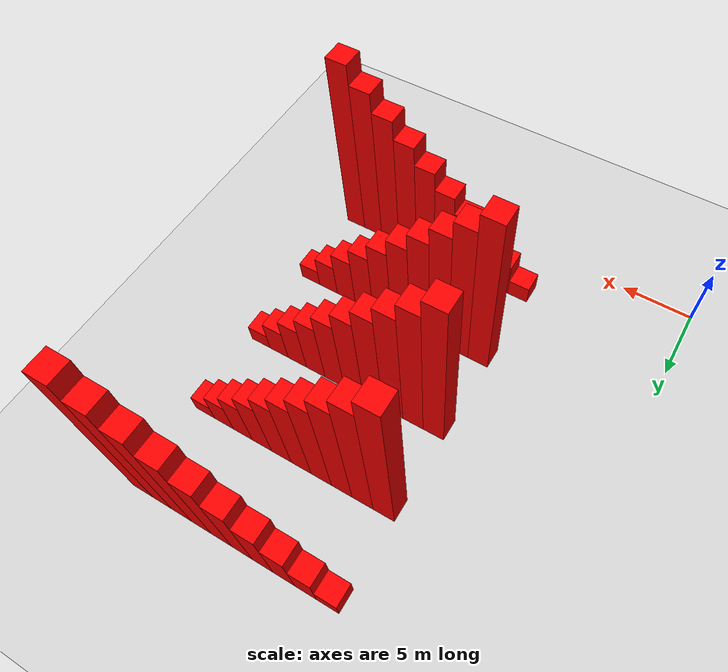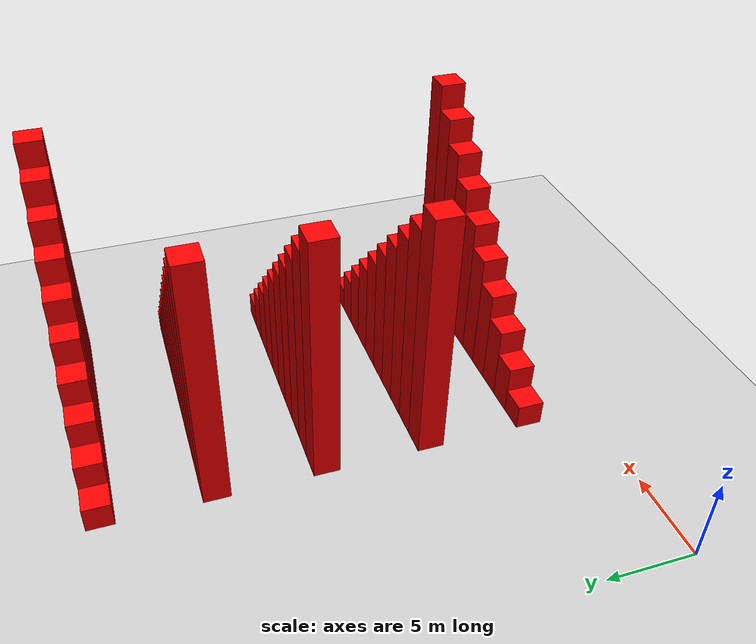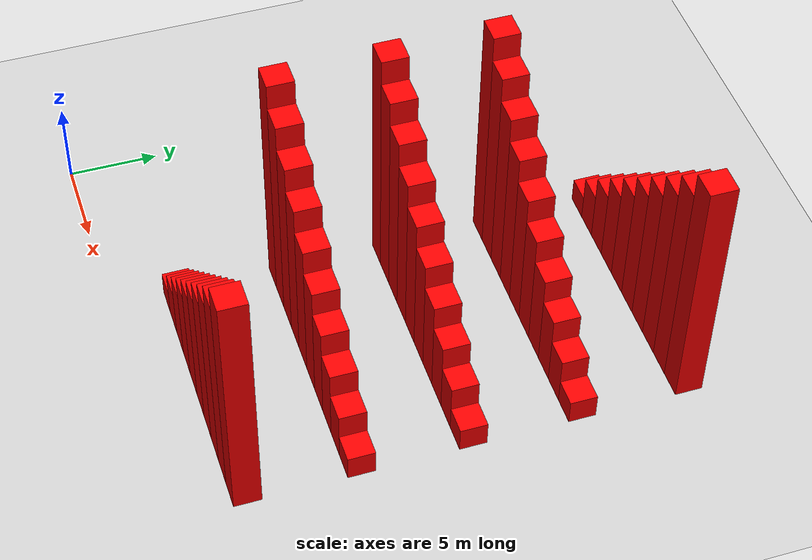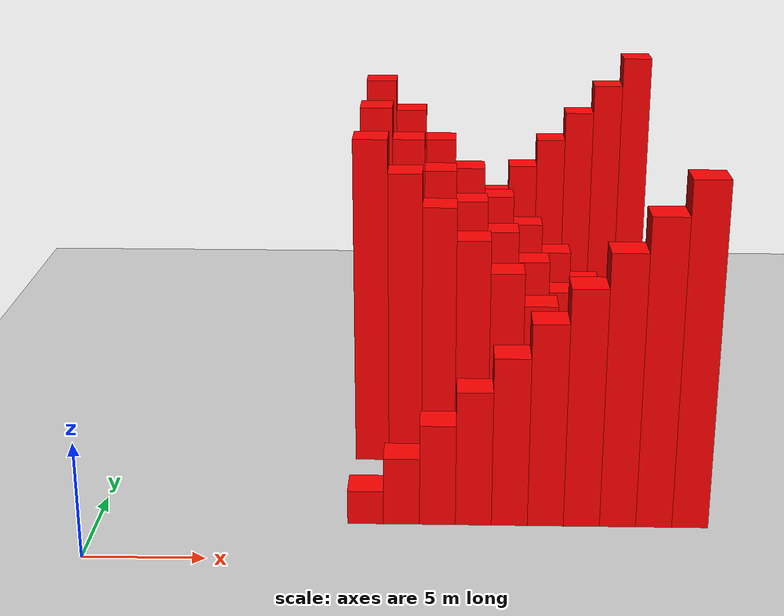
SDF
<sdf version="1.4">
 <world name="default">
  <include><uri>model://sun</uri></include>
  <include><uri>model://ground_plane</uri></include>
  <model name="barrier_7_2_1">
   <pose>11.25 3.75 0.75 0 -0 0</pose>
   <static>1</static>
   <link name="link">
    <collision name="collision"><geometry><box><size>1.5 1.5 1.5</size></box></geometry></collision>
    <visual name="visual">
     <geometry><box><size>1.5 1.5 1.5</size></box></geometry>
     <material>
      <ambient>1 0 0 1</ambient>
      <diffuse>1 0 0 1</diffuse>
      <specular>0.1 0.1 0.1 1</specular>
      <emissive>0 0 0 0</emissive>
     </material>
    </visual>
   </link>
  </model>
  <model name="barrier_8_2_2">
   <pose>12.75 3.75 1.5 0 -0 0</pose>
   <static>1</static>
   <link name="link">
    <collision name="collision"><geometry><box><size>1.5 1.5 3.0</size></box></geometry></collision>
    <visual name="visual">
     <geometry><box><size>1.5 1.5 3.0</size></box></geometry>
     <material>
      <ambient>1 0 0 1</ambient>
      <diffuse>1 0 0 1</diffuse>
      <specular>0.1 0.1 0.1 1</specular>
      <emissive>0 0 0 0</emissive>
     </material>
    </visual>
   </link>
  </model>
  <model name="barrier_9_2_3">
   <pose>14.25 3.75 2.25 0 -0 0</pose>
   <static>1</static>
   <link name="link">
    <collision name="collision"><geometry><box><size>1.5 1.5 4.5</size></box></geometry></collision>
    <visual name="visual">
     <geometry><box><size>1.5 1.5 4.5</size></box></geometry>
     <material>
      <ambient>1 0 0 1</ambient>
      <diffuse>1 0 0 1</diffuse>
      <specular>0.1 0.1 0.1 1</specular>
      <emissive>0 0 0 0</emissive>
     </material>
    </visual>
   </link>
  </model>
  <model name="barrier_10_2_4">
   <pose>15.75 3.75 3.0 0 -0 0</pose>
   <static>1</static>
   <link name="link">
    <collision name="collision"><geometry><box><size>1.5 1.5 6.0</size></box></geometry></collision>
    <visual name="visual">
     <geometry><box><size>1.5 1.5 6.0</size></box></geometry>
     <material>
      <ambient>1 0 0 1</ambient>
      <diffuse>1 0 0 1</diffuse>
      <specular>0.1 0.1 0.1 1</specular>
      <emissive>0 0 0 0</emissive>
     </material>
    </visual>
   </link>
  </model>
  <model name="barrier_11_2_5">
   <pose>17.25 3.75 3.75 0 -0 0</pose>
   <static>1</static>
   <link name="link">
    <collision name="collision"><geometry><box><size>1.5 1.5 7.5</size></box></geometry></collision>
    <visual name="visual">
     <geometry><box><size>1.5 1.5 7.5</size></box></geometry>
     <material>
      <ambient>1 0 0 1</ambient>
      <diffuse>1 0 0 1</diffuse>
      <specular>0.1 0.1 0.1 1</specular>
      <emissive>0 0 0 0</emissive>
     </material>
    </visual>
   </link>
  </model>
  <model name="barrier_12_2_6">
   <pose>18.75 3.75 4.5 0 -0 0</pose>
   <static>1</static>
   <link name="link">
    <collision name="collision"><geometry><box><size>1.5 1.5 9.0</size></box></geometry></collision>
    <visual name="visual">
     <geometry><box><size>1.5 1.5 9.0</size></box></geometry>
     <material>
      <ambient>1 0 0 1</ambient>
      <diffuse>1 0 0 1</diffuse>
      <specular>0.1 0.1 0.1 1</specular>
      <emissive>0 0 0 0</emissive>
     </material>
    </visual>
   </link>
  </model>
  <model name="barrier_13_2_7">
   <pose>20.25 3.75 5.25 0 -0 0</pose>
   <static>1</static>
   <link name="link">
    <collision name="collision"><geometry><box><size>1.5 1.5 10.5</size></box></geometry></collision>
    <visual name="visual">
     <geometry><box><size>1.5 1.5 10.5</size></box></geometry>
     <material>
      <ambient>1 0 0 1</ambient>
      <diffuse>1 0 0 1</diffuse>
      <specular>0.1 0.1 0.1 1</specular>
      <emissive>0 0 0 0</emissive>
     </material>
    </visual>
   </link>
  </model>
  <model name="barrier_14_2_8">
   <pose>21.75 3.75 6.0 0 -0 0</pose>
   <static>1</static>
   <link name="link">
    <collision name="collision"><geometry><box><size>1.5 1.5 12.0</size></box></geometry></collision>
    <visual name="visual">
     <geometry><box><size>1.5 1.5 12.0</size></box></geometry>
     <material>
      <ambient>1 0 0 1</ambient>
      <diffuse>1 0 0 1</diffuse>
      <specular>0.1 0.1 0.1 1</specular>
      <emissive>0 0 0 0</emissive>
     </material>
    </visual>
   </link>
  </model>
  <model name="barrier_15_2_9">
   <pose>23.25 3.75 6.75 0 -0 0</pose>
   <static>1</static>
   <link name="link">
    <collision name="collision"><geometry><box><size>1.5 1.5 13.5</size></box></geometry></collision>
    <visual name="visual">
     <geometry><box><size>1.5 1.5 13.5</size></box></geometry>
     <material>
      <ambient>1 0 0 1</ambient>
      <diffuse>1 0 0 1</diffuse>
      <specular>0.1 0.1 0.1 1</specular>
      <emissive>0 0 0 0</emissive>
     </material>
    </visual>
   </link>
  </model>
  <model name="barrier_16_2_10">
   <pose>24.75 3.75 7.5 0 -0 0</pose>
   <static>1</static>
   <link name="link">
    <collision name="collision"><geometry><box><size>1.5 1.5 15.0</size></box></geometry></collision>
    <visual name="visual">
     <geometry><box><size>1.5 1.5 15.0</size></box></geometry>
     <material>
      <ambient>1 0 0 1</ambient>
      <diffuse>1 0 0 1</diffuse>
      <specular>0.1 0.1 0.1 1</specular>
      <emissive>0 0 0 0</emissive>
     </material>
    </visual>
   </link>
  </model>
  <model name="barrier_7_6_10">
   <pose>11.25 9.75 7.5 0 -0 0</pose>
   <static>1</static>
   <link name="link">
    <collision name="collision"><geometry><box><size>1.5 1.5 15.0</size></box></geometry></collision>
    <visual name="visual">
     <geometry><box><size>1.5 1.5 15.0</size></box></geometry>
     <material>
      <ambient>1 0 0 1</ambient>
      <diffuse>1 0 0 1</diffuse>
      <specular>0.1 0.1 0.1 1</specular>
      <emissive>0 0 0 0</emissive>
     </material>
    </visual>
   </link>
  </model>
  <model name="barrier_8_6_9">
   <pose>12.75 9.75 6.75 0 -0 0</pose>
   <static>1</static>
   <link name="link">
    <collision name="collision"><geometry><box><size>1.5 1.5 13.5</size></box></geometry></collision>
    <visual name="visual">
     <geometry><box><size>1.5 1.5 13.5</size></box></geometry>
     <material>
      <ambient>1 0 0 1</ambient>
      <diffuse>1 0 0 1</diffuse>
      <specular>0.1 0.1 0.1 1</specular>
      <emissive>0 0 0 0</emissive>
     </material>
    </visual>
   </link>
  </model>
  <model name="barrier_9_6_8">
   <pose>14.25 9.75 6.0 0 -0 0</pose>
   <static>1</static>
   <link name="link">
    <collision name="collision"><geometry><box><size>1.5 1.5 12.0</size></box></geometry></collision>
    <visual name="visual">
     <geometry><box><size>1.5 1.5 12.0</size></box></geometry>
     <material>
      <ambient>1 0 0 1</ambient>
      <diffuse>1 0 0 1</diffuse>
      <specular>0.1 0.1 0.1 1</specular>
      <emissive>0 0 0 0</emissive>
     </material>
    </visual>
   </link>
  </model>
  <model name="barrier_10_6_7">
   <pose>15.75 9.75 5.25 0 -0 0</pose>
   <static>1</static>
   <link name="link">
    <collision name="collision"><geometry><box><size>1.5 1.5 10.5</size></box></geometry></collision>
    <visual name="visual">
     <geometry><box><size>1.5 1.5 10.5</size></box></geometry>
     <material>
      <ambient>1 0 0 1</ambient>
      <diffuse>1 0 0 1</diffuse>
      <specular>0.1 0.1 0.1 1</specular>
      <emissive>0 0 0 0</emissive>
     </material>
    </visual>
   </link>
  </model>
  <model name="barrier_11_6_6">
   <pose>17.25 9.75 4.5 0 -0 0</pose>
   <static>1</static>
   <link name="link">
    <collision name="collision"><geometry><box><size>1.5 1.5 9.0</size></box></geometry></collision>
    <visual name="visual">
     <geometry><box><size>1.5 1.5 9.0</size></box></geometry>
     <material>
      <ambient>1 0 0 1</ambient>
      <diffuse>1 0 0 1</diffuse>
      <specular>0.1 0.1 0.1 1</specular>
      <emissive>0 0 0 0</emissive>
     </material>
    </visual>
   </link>
  </model>
  <model name="barrier_12_6_5">
   <pose>18.75 9.75 3.75 0 -0 0</pose>
   <static>1</static>
   <link name="link">
    <collision name="collision"><geometry><box><size>1.5 1.5 7.5</size></box></geometry></collision>
    <visual name="visual">
     <geometry><box><size>1.5 1.5 7.5</size></box></geometry>
     <material>
      <ambient>1 0 0 1</ambient>
      <diffuse>1 0 0 1</diffuse>
      <specular>0.1 0.1 0.1 1</specular>
      <emissive>0 0 0 0</emissive>
     </material>
    </visual>
   </link>
  </model>
  <model name="barrier_13_6_4">
   <pose>20.25 9.75 3.0 0 -0 0</pose>
   <static>1</static>
   <link name="link">
    <collision name="collision"><geometry><box><size>1.5 1.5 6.0</size></box></geometry></collision>
    <visual name="visual">
     <geometry><box><size>1.5 1.5 6.0</size></box></geometry>
     <material>
      <ambient>1 0 0 1</ambient>
      <diffuse>1 0 0 1</diffuse>
      <specular>0.1 0.1 0.1 1</specular>
      <emissive>0 0 0 0</emissive>
     </material>
    </visual>
   </link>
  </model>
  <model name="barrier_14_6_3">
   <pose>21.75 9.75 2.25 0 -0 0</pose>
   <static>1</static>
   <link name="link">
    <collision name="collision"><geometry><box><size>1.5 1.5 4.5</size></box></geometry></collision>
    <visual name="visual">
     <geometry><box><size>1.5 1.5 4.5</size></box></geometry>
     <material>
      <ambient>1 0 0 1</ambient>
      <diffuse>1 0 0 1</diffuse>
      <specular>0.1 0.1 0.1 1</specular>
      <emissive>0 0 0 0</emissive>
     </material>
    </visual>
   </link>
  </model>
  <model name="barrier_15_6_2">
   <pose>23.25 9.75 1.5 0 -0 0</pose>
   <static>1</static>
   <link name="link">
    <collision name="collision"><geometry><box><size>1.5 1.5 3.0</size></box></geometry></collision>
    <visual name="visual">
     <geometry><box><size>1.5 1.5 3.0</size></box></geometry>
     <material>
      <ambient>1 0 0 1</ambient>
      <diffuse>1 0 0 1</diffuse>
      <specular>0.1 0.1 0.1 1</specular>
      <emissive>0 0 0 0</emissive>
     </material>
    </visual>
   </link>
  </model>
  <model name="barrier_16_6_1">
   <pose>24.75 9.75 0.75 0 -0 0</pose>
   <static>1</static>
   <link name="link">
    <collision name="collision"><geometry><box><size>1.5 1.5 1.5</size></box></geometry></collision>
    <visual name="visual">
     <geometry><box><size>1.5 1.5 1.5</size></box></geometry>
     <material>
      <ambient>1 0 0 1</ambient>
      <diffuse>1 0 0 1</diffuse>
      <specular>0.1 0.1 0.1 1</specular>
      <emissive>0 0 0 0</emissive>
     </material>
    </visual>
   </link>
  </model>
  <model name="barrier_7_10_10">
   <pose>11.25 15.75 7.5 0 -0 0</pose>
   <static>1</static>
   <link name="link">
    <collision name="collision"><geometry><box><size>1.5 1.5 15.0</size></box></geometry></collision>
    <visual name="visual">
     <geometry><box><size>1.5 1.5 15.0</size></box></geometry>
     <material>
      <ambient>1 0 0 1</ambient>
      <diffuse>1 0 0 1</diffuse>
      <specular>0.1 0.1 0.1 1</specular>
      <emissive>0 0 0 0</emissive>
     </material>
    </visual>
   </link>
  </model>
  <model name="barrier_8_10_9">
   <pose>12.75 15.75 6.75 0 -0 0</pose>
   <static>1</static>
   <link name="link">
    <collision name="collision"><geometry><box><size>1.5 1.5 13.5</size></box></geometry></collision>
    <visual name="visual">
     <geometry><box><size>1.5 1.5 13.5</size></box></geometry>
     <material>
      <ambient>1 0 0 1</ambient>
      <diffuse>1 0 0 1</diffuse>
      <specular>0.1 0.1 0.1 1</specular>
      <emissive>0 0 0 0</emissive>
     </material>
    </visual>
   </link>
  </model>
  <model name="barrier_9_10_8">
   <pose>14.25 15.75 6.0 0 -0 0</pose>
   <static>1</static>
   <link name="link">
    <collision name="collision"><geometry><box><size>1.5 1.5 12.0</size></box></geometry></collision>
    <visual name="visual">
     <geometry><box><size>1.5 1.5 12.0</size></box></geometry>
     <material>
      <ambient>1 0 0 1</ambient>
      <diffuse>1 0 0 1</diffuse>
      <specular>0.1 0.1 0.1 1</specular>
      <emissive>0 0 0 0</emissive>
     </material>
    </visual>
   </link>
  </model>
  <model name="barrier_10_10_7">
   <pose>15.75 15.75 5.25 0 -0 0</pose>
   <static>1</static>
   <link name="link">
    <collision name="collision"><geometry><box><size>1.5 1.5 10.5</size></box></geometry></collision>
    <visual name="visual">
     <geometry><box><size>1.5 1.5 10.5</size></box></geometry>
     <material>
      <ambient>1 0 0 1</ambient>
      <diffuse>1 0 0 1</diffuse>
      <specular>0.1 0.1 0.1 1</specular>
      <emissive>0 0 0 0</emissive>
     </material>
    </visual>
   </link>
  </model>
  <model name="barrier_11_10_6">
   <pose>17.25 15.75 4.5 0 -0 0</pose>
   <static>1</static>
   <link name="link">
    <collision name="collision"><geometry><box><size>1.5 1.5 9.0</size></box></geometry></collision>
    <visual name="visual">
     <geometry><box><size>1.5 1.5 9.0</size></box></geometry>
     <material>
      <ambient>1 0 0 1</ambient>
      <diffuse>1 0 0 1</diffuse>
      <specular>0.1 0.1 0.1 1</specular>
      <emissive>0 0 0 0</emissive>
     </material>
    </visual>
   </link>
  </model>
  <model name="barrier_12_10_5">
   <pose>18.75 15.75 3.75 0 -0 0</pose>
   <static>1</static>
   <link name="link">
    <collision name="collision"><geometry><box><size>1.5 1.5 7.5</size></box></geometry></collision>
    <visual name="visual">
     <geometry><box><size>1.5 1.5 7.5</size></box></geometry>
     <material>
      <ambient>1 0 0 1</ambient>
      <diffuse>1 0 0 1</diffuse>
      <specular>0.1 0.1 0.1 1</specular>
      <emissive>0 0 0 0</emissive>
     </material>
    </visual>
   </link>
  </model>
  <model name="barrier_13_10_4">
   <pose>20.25 15.75 3.0 0 -0 0</pose>
   <static>1</static>
   <link name="link">
    <collision name="collision"><geometry><box><size>1.5 1.5 6.0</size></box></geometry></collision>
    <visual name="visual">
     <geometry><box><size>1.5 1.5 6.0</size></box></geometry>
     <material>
      <ambient>1 0 0 1</ambient>
      <diffuse>1 0 0 1</diffuse>
      <specular>0.1 0.1 0.1 1</specular>
      <emissive>0 0 0 0</emissive>
     </material>
    </visual>
   </link>
  </model>
  <model name="barrier_14_10_3">
   <pose>21.75 15.75 2.25 0 -0 0</pose>
   <static>1</static>
   <link name="link">
    <collision name="collision"><geometry><box><size>1.5 1.5 4.5</size></box></geometry></collision>
    <visual name="visual">
     <geometry><box><size>1.5 1.5 4.5</size></box></geometry>
     <material>
      <ambient>1 0 0 1</ambient>
      <diffuse>1 0 0 1</diffuse>
      <specular>0.1 0.1 0.1 1</specular>
      <emissive>0 0 0 0</emissive>
     </material>
    </visual>
   </link>
  </model>
  <model name="barrier_15_10_2">
   <pose>23.25 15.75 1.5 0 -0 0</pose>
   <static>1</static>
   <link name="link">
    <collision name="collision"><geometry><box><size>1.5 1.5 3.0</size></box></geometry></collision>
    <visual name="visual">
     <geometry><box><size>1.5 1.5 3.0</size></box></geometry>
     <material>
      <ambient>1 0 0 1</ambient>
      <diffuse>1 0 0 1</diffuse>
      <specular>0.1 0.1 0.1 1</specular>
      <emissive>0 0 0 0</emissive>
     </material>
    </visual>
   </link>
  </model>
  <model name="barrier_16_10_1">
   <pose>24.75 15.75 0.75 0 -0 0</pose>
   <static>1</static>
   <link name="link">
    <collision name="collision"><geometry><box><size>1.5 1.5 1.5</size></box></geometry></collision>
    <visual name="visual">
     <geometry><box><size>1.5 1.5 1.5</size></box></geometry>
     <material>
      <ambient>1 0 0 1</ambient>
      <diffuse>1 0 0 1</diffuse>
      <specular>0.1 0.1 0.1 1</specular>
      <emissive>0 0 0 0</emissive>
     </material>
    </visual>
   </link>
  </model>
  <model name="barrier_7_14_10">
   <pose>11.25 21.75 7.5 0 -0 0</pose>
   <static>1</static>
   <link name="link">
    <collision name="collision"><geometry><box><size>1.5 1.5 15.0</size></box></geometry></collision>
    <visual name="visual">
     <geometry><box><size>1.5 1.5 15.0</size></box></geometry>
     <material>
      <ambient>1 0 0 1</ambient>
      <diffuse>1 0 0 1</diffuse>
      <specular>0.1 0.1 0.1 1</specular>
      <emissive>0 0 0 0</emissive>
     </material>
    </visual>
   </link>
  </model>
  <model name="barrier_8_14_9">
   <pose>12.75 21.75 6.75 0 -0 0</pose>
   <static>1</static>
   <link name="link">
    <collision name="collision"><geometry><box><size>1.5 1.5 13.5</size></box></geometry></collision>
    <visual name="visual">
     <geometry><box><size>1.5 1.5 13.5</size></box></geometry>
     <material>
      <ambient>1 0 0 1</ambient>
      <diffuse>1 0 0 1</diffuse>
      <specular>0.1 0.1 0.1 1</specular>
      <emissive>0 0 0 0</emissive>
     </material>
    </visual>
   </link>
  </model>
  <model name="barrier_9_14_8">
   <pose>14.25 21.75 6.0 0 -0 0</pose>
   <static>1</static>
   <link name="link">
    <collision name="collision"><geometry><box><size>1.5 1.5 12.0</size></box></geometry></collision>
    <visual name="visual">
     <geometry><box><size>1.5 1.5 12.0</size></box></geometry>
     <material>
      <ambient>1 0 0 1</ambient>
      <diffuse>1 0 0 1</diffuse>
      <specular>0.1 0.1 0.1 1</specular>
      <emissive>0 0 0 0</emissive>
     </material>
    </visual>
   </link>
  </model>
  <model name="barrier_10_14_7">
   <pose>15.75 21.75 5.25 0 -0 0</pose>
   <static>1</static>
   <link name="link">
    <collision name="collision"><geometry><box><size>1.5 1.5 10.5</size></box></geometry></collision>
    <visual name="visual">
     <geometry><box><size>1.5 1.5 10.5</size></box></geometry>
     <material>
      <ambient>1 0 0 1</ambient>
      <diffuse>1 0 0 1</diffuse>
      <specular>0.1 0.1 0.1 1</specular>
      <emissive>0 0 0 0</emissive>
     </material>
    </visual>
   </link>
  </model>
  <model name="barrier_11_14_6">
   <pose>17.25 21.75 4.5 0 -0 0</pose>
   <static>1</static>
   <link name="link">
    <collision name="collision"><geometry><box><size>1.5 1.5 9.0</size></box></geometry></collision>
    <visual name="visual">
     <geometry><box><size>1.5 1.5 9.0</size></box></geometry>
     <material>
      <ambient>1 0 0 1</ambient>
      <diffuse>1 0 0 1</diffuse>
      <specular>0.1 0.1 0.1 1</specular>
      <emissive>0 0 0 0</emissive>
     </material>
    </visual>
   </link>
  </model>
  <model name="barrier_12_14_5">
   <pose>18.75 21.75 3.75 0 -0 0</pose>
   <static>1</static>
   <link name="link">
    <collision name="collision"><geometry><box><size>1.5 1.5 7.5</size></box></geometry></collision>
    <visual name="visual">
     <geometry><box><size>1.5 1.5 7.5</size></box></geometry>
     <material>
      <ambient>1 0 0 1</ambient>
      <diffuse>1 0 0 1</diffuse>
      <specular>0.1 0.1 0.1 1</specular>
      <emissive>0 0 0 0</emissive>
     </material>
    </visual>
   </link>
  </model>
  <model name="barrier_13_14_4">
   <pose>20.25 21.75 3.0 0 -0 0</pose>
   <static>1</static>
   <link name="link">
    <collision name="collision"><geometry><box><size>1.5 1.5 6.0</size></box></geometry></collision>
    <visual name="visual">
     <geometry><box><size>1.5 1.5 6.0</size></box></geometry>
     <material>
      <ambient>1 0 0 1</ambient>
      <diffuse>1 0 0 1</diffuse>
      <specular>0.1 0.1 0.1 1</specular>
      <emissive>0 0 0 0</emissive>
     </material>
    </visual>
   </link>
  </model>
  <model name="barrier_14_14_3">
   <pose>21.75 21.75 2.25 0 -0 0</pose>
   <static>1</static>
   <link name="link">
    <collision name="collision"><geometry><box><size>1.5 1.5 4.5</size></box></geometry></collision>
    <visual name="visual">
     <geometry><box><size>1.5 1.5 4.5</size></box></geometry>
     <material>
      <ambient>1 0 0 1</ambient>
      <diffuse>1 0 0 1</diffuse>
      <specular>0.1 0.1 0.1 1</specular>
      <emissive>0 0 0 0</emissive>
     </material>
    </visual>
   </link>
  </model>
  <model name="barrier_15_14_2">
   <pose>23.25 21.75 1.5 0 -0 0</pose>
   <static>1</static>
   <link name="link">
    <collision name="collision"><geometry><box><size>1.5 1.5 3.0</size></box></geometry></collision>
    <visual name="visual">
     <geometry><box><size>1.5 1.5 3.0</size></box></geometry>
     <material>
      <ambient>1 0 0 1</ambient>
      <diffuse>1 0 0 1</diffuse>
      <specular>0.1 0.1 0.1 1</specular>
      <emissive>0 0 0 0</emissive>
     </material>
    </visual>
   </link>
  </model>
  <model name="barrier_16_14_1">
   <pose>24.75 21.75 0.75 0 -0 0</pose>
   <static>1</static>
   <link name="link">
    <collision name="collision"><geometry><box><size>1.5 1.5 1.5</size></box></geometry></collision>
    <visual name="visual">
     <geometry><box><size>1.5 1.5 1.5</size></box></geometry>
     <material>
      <ambient>1 0 0 1</ambient>
      <diffuse>1 0 0 1</diffuse>
      <specular>0.1 0.1 0.1 1</specular>
      <emissive>0 0 0 0</emissive>
     </material>
    </visual>
   </link>
  </model>
  <model name="barrier_7_18_1">
   <pose>11.25 27.75 0.75 0 -0 0</pose>
   <static>1</static>
   <link name="link">
    <collision name="collision"><geometry><box><size>1.5 1.5 1.5</size></box></geometry></collision>
    <visual name="visual">
     <geometry><box><size>1.5 1.5 1.5</size></box></geometry>
     <material>
      <ambient>1 0 0 1</ambient>
      <diffuse>1 0 0 1</diffuse>
      <specular>0.1 0.1 0.1 1</specular>
      <emissive>0 0 0 0</emissive>
     </material>
    </visual>
   </link>
  </model>
  <model name="barrier_8_18_2">
   <pose>12.75 27.75 1.5 0 -0 0</pose>
   <static>1</static>
   <link name="link">
    <collision name="collision"><geometry><box><size>1.5 1.5 3.0</size></box></geometry></collision>
    <visual name="visual">
     <geometry><box><size>1.5 1.5 3.0</size></box></geometry>
     <material>
      <ambient>1 0 0 1</ambient>
      <diffuse>1 0 0 1</diffuse>
      <specular>0.1 0.1 0.1 1</specular>
      <emissive>0 0 0 0</emissive>
     </material>
    </visual>
   </link>
  </model>
  <model name="barrier_9_18_3">
   <pose>14.25 27.75 2.25 0 -0 0</pose>
   <static>1</static>
   <link name="link">
    <collision name="collision"><geometry><box><size>1.5 1.5 4.5</size></box></geometry></collision>
    <visual name="visual">
     <geometry><box><size>1.5 1.5 4.5</size></box></geometry>
     <material>
      <ambient>1 0 0 1</ambient>
      <diffuse>1 0 0 1</diffuse>
      <specular>0.1 0.1 0.1 1</specular>
      <emissive>0 0 0 0</emissive>
     </material>
    </visual>
   </link>
  </model>
  <model name="barrier_10_18_4">
   <pose>15.75 27.75 3.0 0 -0 0</pose>
   <static>1</static>
   <link name="link">
    <collision name="collision"><geometry><box><size>1.5 1.5 6.0</size></box></geometry></collision>
    <visual name="visual">
     <geometry><box><size>1.5 1.5 6.0</size></box></geometry>
     <material>
      <ambient>1 0 0 1</ambient>
      <diffuse>1 0 0 1</diffuse>
      <specular>0.1 0.1 0.1 1</specular>
      <emissive>0 0 0 0</emissive>
     </material>
    </visual>
   </link>
  </model>
  <model name="barrier_11_18_5">
   <pose>17.25 27.75 3.75 0 -0 0</pose>
   <static>1</static>
   <link name="link">
    <collision name="collision"><geometry><box><size>1.5 1.5 7.5</size></box></geometry></collision>
    <visual name="visual">
     <geometry><box><size>1.5 1.5 7.5</size></box></geometry>
     <material>
      <ambient>1 0 0 1</ambient>
      <diffuse>1 0 0 1</diffuse>
      <specular>0.1 0.1 0.1 1</specular>
      <emissive>0 0 0 0</emissive>
     </material>
    </visual>
   </link>
  </model>
  <model name="barrier_12_18_6">
   <pose>18.75 27.75 4.5 0 -0 0</pose>
   <static>1</static>
   <link name="link">
    <collision name="collision"><geometry><box><size>1.5 1.5 9.0</size></box></geometry></collision>
    <visual name="visual">
     <geometry><box><size>1.5 1.5 9.0</size></box></geometry>
     <material>
      <ambient>1 0 0 1</ambient>
      <diffuse>1 0 0 1</diffuse>
      <specular>0.1 0.1 0.1 1</specular>
      <emissive>0 0 0 0</emissive>
     </material>
    </visual>
   </link>
  </model>
  <model name="barrier_13_18_7">
   <pose>20.25 27.75 5.25 0 -0 0</pose>
   <static>1</static>
   <link name="link">
    <collision name="collision"><geometry><box><size>1.5 1.5 10.5</size></box></geometry></collision>
    <visual name="visual">
     <geometry><box><size>1.5 1.5 10.5</size></box></geometry>
     <material>
      <ambient>1 0 0 1</ambient>
      <diffuse>1 0 0 1</diffuse>
      <specular>0.1 0.1 0.1 1</specular>
      <emissive>0 0 0 0</emissive>
     </material>
    </visual>
   </link>
  </model>
  <model name="barrier_14_18_8">
   <pose>21.75 27.75 6.0 0 -0 0</pose>
   <static>1</static>
   <link name="link">
    <collision name="collision"><geometry><box><size>1.5 1.5 12.0</size></box></geometry></collision>
    <visual name="visual">
     <geometry><box><size>1.5 1.5 12.0</size></box></geometry>
     <material>
      <ambient>1 0 0 1</ambient>
      <diffuse>1 0 0 1</diffuse>
      <specular>0.1 0.1 0.1 1</specular>
      <emissive>0 0 0 0</emissive>
     </material>
    </visual>
   </link>
  </model>
  <model name="barrier_15_18_9">
   <pose>23.25 27.75 6.75 0 -0 0</pose>
   <static>1</static>
   <link name="link">
    <collision name="collision"><geometry><box><size>1.5 1.5 13.5</size></box></geometry></collision>
    <visual name="visual">
     <geometry><box><size>1.5 1.5 13.5</size></box></geometry>
     <material>
      <ambient>1 0 0 1</ambient>
      <diffuse>1 0 0 1</diffuse>
      <specular>0.1 0.1 0.1 1</specular>
      <emissive>0 0 0 0</emissive>
     </material>
    </visual>
   </link>
  </model>
  <model name="barrier_16_18_10">
   <pose>24.75 27.75 7.5 0 -0 0</pose>
   <static>1</static>
   <link name="link">
    <collision name="collision"><geometry><box><size>1.5 1.5 15.0</size></box></geometry></collision>
    <visual name="visual">
     <geometry><box><size>1.5 1.5 15.0</size></box></geometry>
     <material>
      <ambient>1 0 0 1</ambient>
      <diffuse>1 0 0 1</diffuse>
      <specular>0.1 0.1 0.1 1</specular>
      <emissive>0 0 0 0</emissive>
     </material>
    </visual>
   </link>
  </model>
  <model name="ground_plane">
   <static>1</static>
   <link name="link">
    <collision name="collision">
     <geometry><plane><normal>0 0 1</normal><size>100 100</size></plane></geometry>
     <surface><friction><ode><mu>100</mu><mu2>50</mu2></ode></friction></surface>
    </collision>
    <visual name="visual">
     <cast_shadows>0</cast_shadows>
     <geometry><plane><normal>0 0 1</normal><size>100 100</size></plane></geometry>
     <material>
      <script><uri>file://media/materials/scripts/gazebo.material</uri><name>Gazebo/Grey</name></script>
     </material>
    </visual>
    <velocity_decay><linear>0</linear><angular>0</angular></velocity_decay>
   </link>
   <pose>0.497681 0 0 0 -0 0</pose>
  </model>
 </world>
</sdf>
